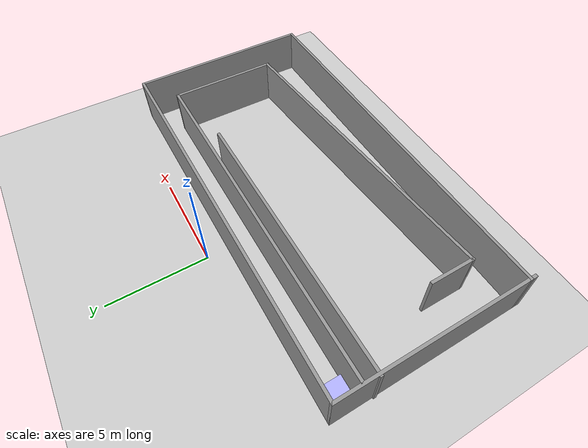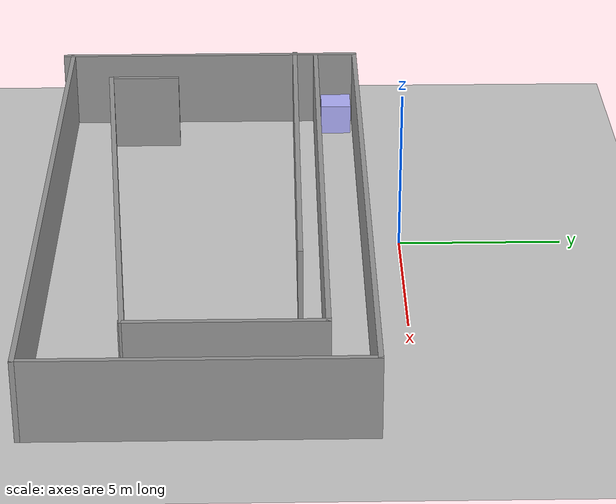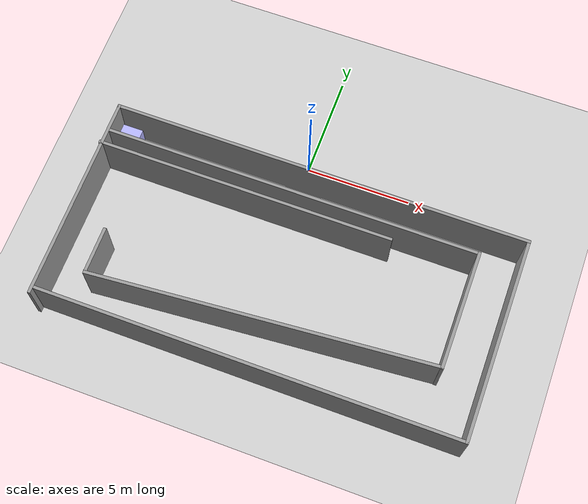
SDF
<sdf version="1.6">
 <world name="default">
  <light name="sun" type="directional">
   <pose>0 0 10 0 -0 0</pose>
   <diffuse>0.8 0.8 0.8 1</diffuse>
   <specular>0.1 0.1 0.1 1</specular>
   <attenuation>
    <range>1000</range>
    <constant>0.9</constant>
    <linear>0.01</linear>
    <quadratic>0.001</quadratic>
   </attenuation>
   <direction>-0.5 0.5 -1</direction>
  </light>
  <model name="ground_plane">
   <static>1</static>
   <link name="link">
    <collision name="collision">
     <geometry><plane><normal>0 0 1</normal><size>100 100</size></plane></geometry>
     <surface><friction><ode><mu>100</mu><mu2>50</mu2></ode></friction></surface>
    </collision>
    <visual name="visual">
     <cast_shadows>0</cast_shadows>
     <geometry><plane><normal>0 0 1</normal><size>100 100</size></plane></geometry>
     <material>
      <script><uri>file://media/materials/scripts/gazebo.material</uri><name>Gazebo/Grey</name></script>
     </material>
    </visual>
   </link>
  </model>
  <gravity>0 0 -9.8</gravity>
  <magnetic_field>6e-06 2.3e-05 -4.2e-05</magnetic_field>
  <atmosphere type="adiabatic"/>
  <physics name="default_physics" default="0" type="ode">
   <max_step_size>0.001</max_step_size>
   <real_time_factor>1</real_time_factor>
   <real_time_update_rate>1000</real_time_update_rate>
  </physics>
  <scene><ambient>0.4 0.4 0.4 1</ambient><background>0.7 0.7 0.7 1</background><shadows>1</shadows></scene>
  <spherical_coordinates>
   <surface_model>EARTH_WGS84</surface_model>
   <latitude_deg>0</latitude_deg>
   <longitude_deg>0</longitude_deg>
   <elevation>0</elevation>
   <heading_deg>0</heading_deg>
  </spherical_coordinates>
  <model name="ClassProject">
   <pose>0.79301 -6.02879 0 0 -0 0</pose>
   <link name="Wall_12">
    <collision name="Wall_12_Collision">
     <geometry><box><size>5.7344 0.15 2.5</size></box></geometry>
     <pose>0 0 1.25 0 -0 0</pose>
    </collision>
    <visual name="Wall_12_Visual">
     <pose>0 0 1.25 0 -0 0</pose>
     <geometry><box><size>5.7344 0.15 2.5</size></box></geometry>
     <material>
      <script><uri>file://media/materials/scripts/gazebo.material</uri><name>Gazebo/Grey</name></script>
      <ambient>1 1 1 1</ambient>
     </material>
    </visual>
    <pose>8.04211 0.81777 0 0 0 -1.5708</pose>
   </link>
   <link name="Wall_14">
    <collision name="Wall_14_Collision">
     <geometry><box><size>2.23441 0.15 2.5</size></box></geometry>
     <pose>0 0 1.25 0 -0 0</pose>
    </collision>
    <visual name="Wall_14_Visual">
     <pose>0 0 1.25 0 -0 0</pose>
     <geometry><box><size>2.23441 0.15 2.5</size></box></geometry>
     <material>
      <script><uri>file://media/materials/scripts/gazebo.material</uri><name>Gazebo/Grey</name></script>
      <ambient>1 1 1 1</ambient>
     </material>
    </visual>
    <pose>-8.00118 -2.13119 0 0 -0 1.5708</pose>
   </link>
   <link name="Wall_2">
    <collision name="Wall_2_Collision">
     <geometry><box><size>10 0.15 2.5</size></box></geometry>
     <pose>0 0 1.25 0 -0 0</pose>
    </collision>
    <visual name="Wall_2_Visual">
     <pose>0 0 1.25 0 -0 0</pose>
     <geometry><box><size>10 0.15 2.5</size></box></geometry>
     <material>
      <script><uri>file://media/materials/scripts/gazebo.material</uri><name>Gazebo/Grey</name></script>
      <ambient>1 1 1 1</ambient>
     </material>
    </visual>
    <pose>-9.89296 0 0 0 -0 1.5708</pose>
   </link>
   <link name="Wall_22">
    <collision name="Wall_22_Collision">
     <geometry><box><size>16.2469 0.15 2.5</size></box></geometry>
     <pose>0 0 1.25 0 -0 0</pose>
    </collision>
    <visual name="Wall_22_Visual">
     <pose>0 0 1.25 0 -0 0</pose>
     <geometry><box><size>16.2469 0.15 2.5</size></box></geometry>
     <material>
      <script><uri>file://media/materials/scripts/gazebo.material</uri><name>Gazebo/Grey</name></script>
      <ambient>1 1 1 1</ambient>
     </material>
    </visual>
    <pose>0.020463 -2.60227 0 0 -0 0.081621</pose>
   </link>
   <link name="Wall_24">
    <collision name="Wall_24_Collision">
     <geometry><box><size>14.25 0.15 2.5</size></box></geometry>
     <pose>0 0 1.25 0 -0 0</pose>
    </collision>
    <visual name="Wall_24_Visual">
     <pose>0 0 1.25 0 -0 0</pose>
     <geometry><box><size>14.25 0.15 2.5</size></box></geometry>
     <material>
      <script><uri>file://media/materials/scripts/gazebo.material</uri><name>Gazebo/Grey</name></script>
      <ambient>1 1 1 1</ambient>
     </material>
    </visual>
    <pose>-2.90704 2.90109 0 0 -0 3.14159</pose>
   </link>
   <link name="Wall_3">
    <collision name="Wall_3_Collision">
     <geometry><box><size>20 0.15 2.5</size></box></geometry>
     <pose>0 0 1.25 0 -0 0</pose>
    </collision>
    <visual name="Wall_3_Visual">
     <pose>0 0 1.25 0 -0 0</pose>
     <geometry><box><size>20 0.15 2.5</size></box></geometry>
     <material>
      <script><uri>file://media/materials/scripts/gazebo.material</uri><name>Gazebo/Grey</name></script>
      <ambient>1 1 1 1</ambient>
     </material>
    </visual>
    <pose>0.032041 4.925 0 0 -0 0</pose>
   </link>
   <link name="Wall_4">
    <collision name="Wall_4_Collision">
     <geometry><box><size>9.75 0.15 2.5</size></box></geometry>
     <pose>0 0 1.25 0 -0 0</pose>
    </collision>
    <visual name="Wall_4_Visual">
     <pose>0 0 1.25 0 -0 0</pose>
     <geometry><box><size>9.75 0.15 2.5</size></box></geometry>
     <material>
      <script><uri>file://media/materials/scripts/gazebo.material</uri><name>Gazebo/Grey</name></script>
      <ambient>1 1 1 1</ambient>
     </material>
    </visual>
    <pose>9.95704 0.125 0 0 0 -1.5708</pose>
   </link>
   <link name="Wall_5">
    <collision name="Wall_5_Collision">
     <geometry><box><size>20 0.15 2.5</size></box></geometry>
     <pose>0 0 1.25 0 -0 0</pose>
    </collision>
    <visual name="Wall_5_Visual">
     <pose>0 0 1.25 0 -0 0</pose>
     <geometry><box><size>20 0.15 2.5</size></box></geometry>
     <material>
      <script><uri>file://media/materials/scripts/gazebo.material</uri><name>Gazebo/Grey</name></script>
      <ambient>1 1 1 1</ambient>
     </material>
    </visual>
    <pose>0.032041 -4.675 0 0 -0 3.14159</pose>
   </link>
   <link name="Wall_7">
    <collision name="Wall_7_Collision">
     <geometry><box><size>18 0.15 2.5</size></box></geometry>
     <pose>0 0 1.25 0 -0 0</pose>
    </collision>
    <visual name="Wall_7_Visual">
     <pose>0 0 1.25 0 -0 0</pose>
     <geometry><box><size>18 0.15 2.5</size></box></geometry>
     <material>
      <script><uri>file://media/materials/scripts/gazebo.material</uri><name>Gazebo/Grey</name></script>
      <ambient>1 1 1 1</ambient>
     </material>
    </visual>
    <pose>-0.882893 3.60997 0 0 -0 0</pose>
   </link>
   <static>1</static>
  </model>
  <model name="unit_box_0_0">
   <link name="link">
    <inertial>
     <mass>1</mass>
     <inertia>
      <ixx>0.166667</ixx>
      <ixy>0</ixy>
      <ixz>0</ixz>
      <iyy>0.166667</iyy>
      <iyz>0</iyz>
      <izz>0.166667</izz>
     </inertia>
    </inertial>
    <visual name="visual">
     <geometry><box><size>1 1 1</size></box></geometry>
     <material>
      <script><name>Gazebo/Grey</name><uri>file://media/materials/scripts/gazebo.material</uri></script>
      <ambient>0.3 0.3 1 1</ambient>
      <diffuse>0.7 0.7 1 1</diffuse>
      <specular>0.01 0.01 1 1</specular>
      <emissive>0 0 1 1</emissive>
      <shader type="vertex"><normal_map>__default__</normal_map></shader>
     </material>
    </visual>
    <collision name="collision">
     <geometry><box><size>1 1 1</size></box></geometry>
     <surface>
      <friction>
       <ode><mu>1</mu><mu2>1</mu2><fdir1>0 0 0</fdir1><slip1>0</slip1><slip2>0</slip2></ode>
       <torsional>
        <coefficient>1</coefficient>
        <patch_radius>0</patch_radius>
        <surface_radius>0</surface_radius>
        <use_patch_radius>1</use_patch_radius>
        <ode><slip>0</slip></ode>
       </torsional>
      </friction>
      <bounce><restitution_coefficient>0</restitution_coefficient><threshold>1e+06</threshold></bounce>
      <contact>
       <collide_without_contact>0</collide_without_contact>
       <collide_without_contact_bitmask>1</collide_without_contact_bitmask>
       <collide_bitmask>1</collide_bitmask>
       <ode>
        <soft_cfm>0</soft_cfm>
        <soft_erp>0.2</soft_erp>
        <kp>1e+13</kp>
        <kd>1</kd>
        <max_vel>0.01</max_vel>
        <min_depth>0</min_depth>
       </ode>
       <bullet>
        <split_impulse>1</split_impulse>
        <split_impulse_penetration_threshold>-0.01</split_impulse_penetration_threshold>
        <soft_cfm>0</soft_cfm>
        <soft_erp>0.2</soft_erp>
        <kp>1e+13</kp>
        <kd>1</kd>
       </bullet>
      </contact>
     </surface>
    </collision>
   </link>
   <static>0</static>
   <pose>-8.52497 -1.74078 0.499995 0 -1e-05 0</pose>
  </model>
 </world>
</sdf>
